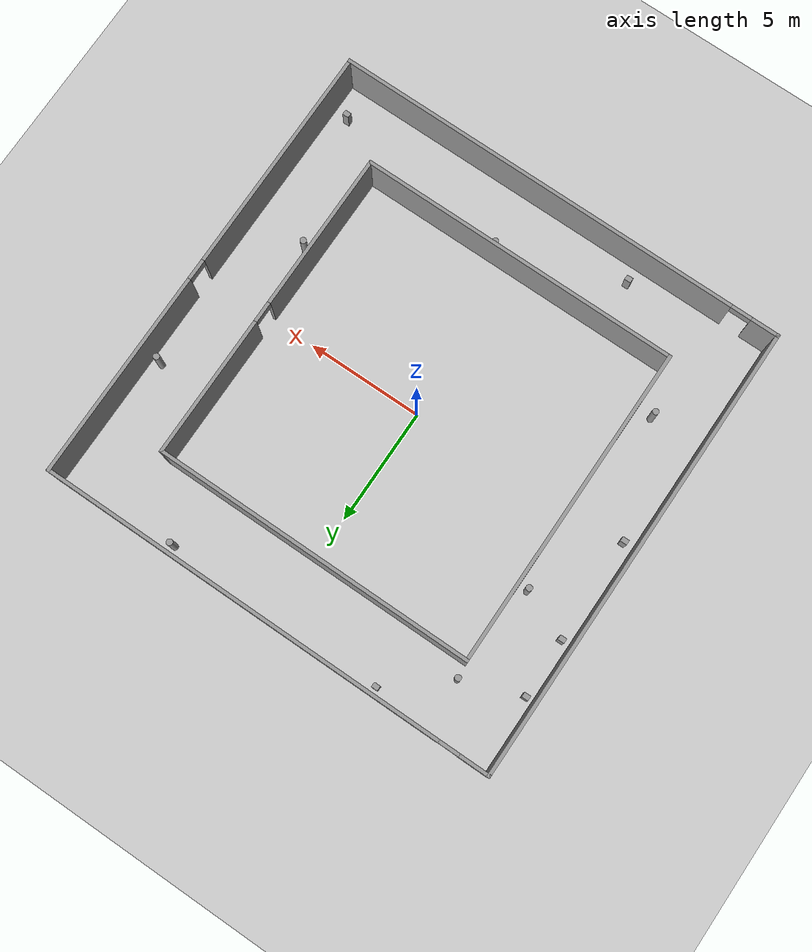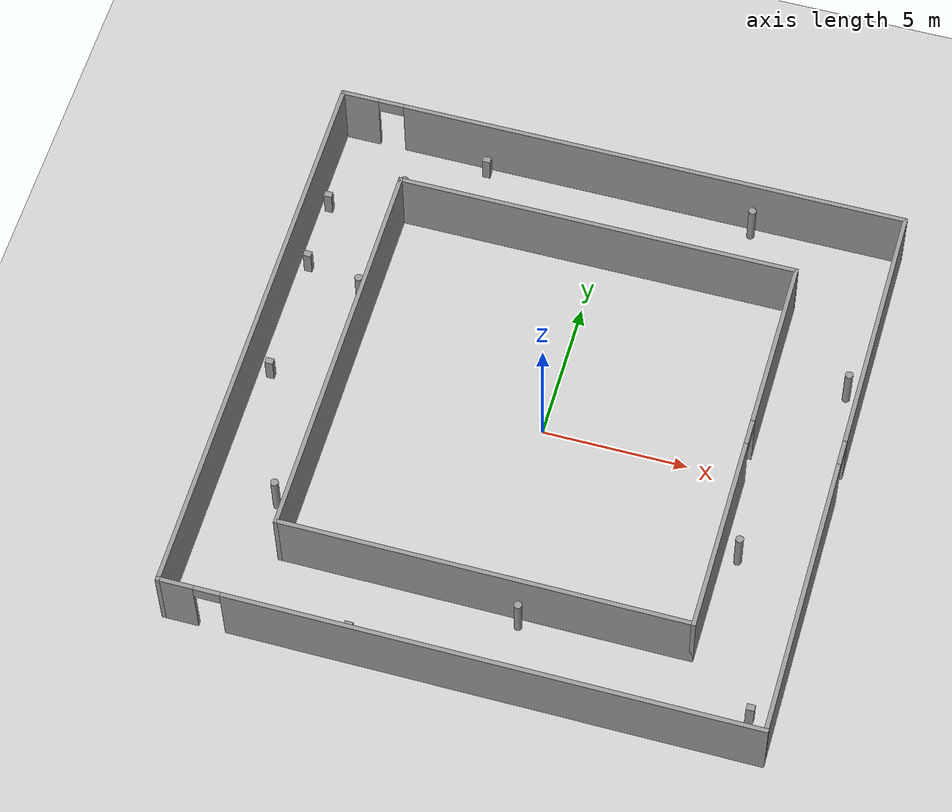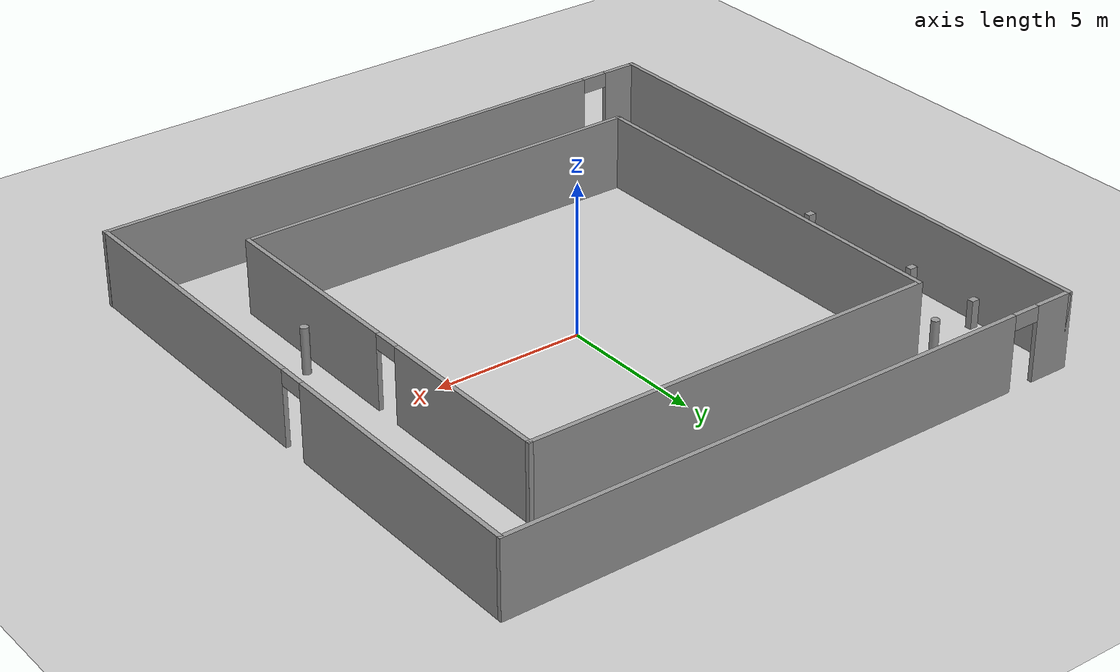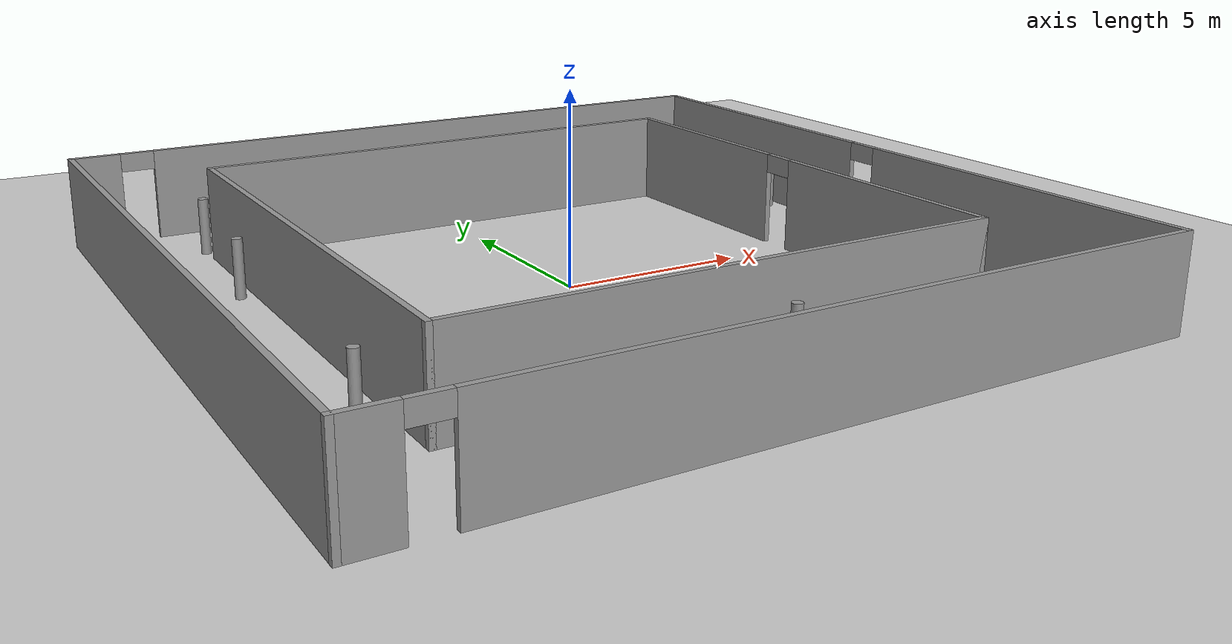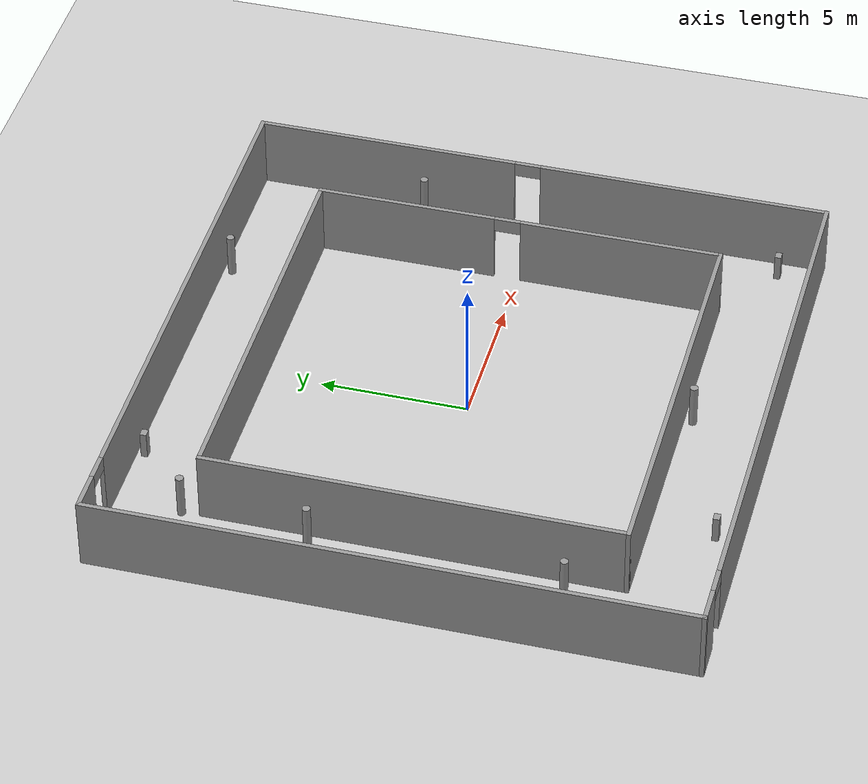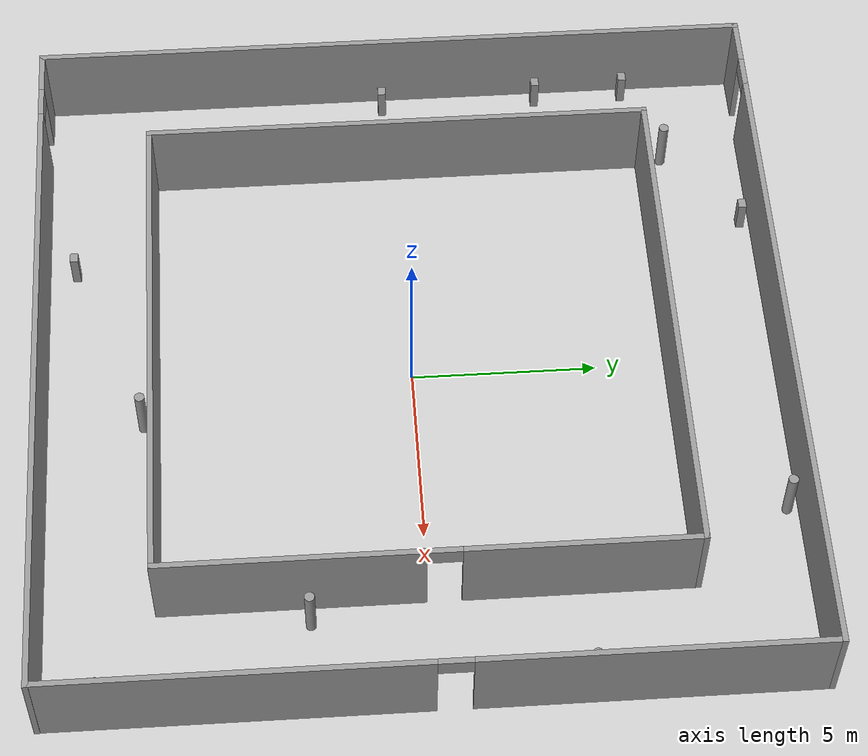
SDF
<sdf version="1.7">
 <world name="default">
  <light name="sun" type="directional">
   <pose>0 0 10 0 -0 0</pose>
   <diffuse>0.8 0.8 0.8 1</diffuse>
   <specular>0.2 0.2 0.2 1</specular>
   <attenuation>
    <range>1000</range>
    <constant>0.9</constant>
    <linear>0.01</linear>
    <quadratic>0.001</quadratic>
   </attenuation>
   <direction>-0.5 0.1 -0.9</direction>
   <spot><inner_angle>0</inner_angle><outer_angle>0</outer_angle><falloff>0</falloff></spot>
  </light>
  <model name="ground_plane">
   <static>1</static>
   <link name="link">
    <collision name="collision">
     <geometry><plane><normal>0 0 1</normal><size>100 100</size></plane></geometry>
     <surface>
      <contact><collide_bitmask>65535</collide_bitmask></contact>
      <friction><ode><mu>100</mu><mu2>50</mu2></ode></friction>
     </surface>
    </collision>
    <visual name="visual">
     <cast_shadows>0</cast_shadows>
     <geometry><plane><normal>0 0 1</normal><size>100 100</size></plane></geometry>
     <material>
      <script><uri>file://media/materials/scripts/gazebo.material</uri><name>Gazebo/Grey</name></script>
     </material>
    </visual>
   </link>
  </model>
  <gravity>0 0 -9.8</gravity>
  <magnetic_field>6e-06 2.3e-05 -4.2e-05</magnetic_field>
  <atmosphere type="adiabatic"/>
  <physics type="ode">
   <max_step_size>0.001</max_step_size>
   <real_time_factor>1</real_time_factor>
   <real_time_update_rate>1000</real_time_update_rate>
  </physics>
  <scene><ambient>0.4 0.4 0.4 1</ambient><background>0.7 0.7 0.7 1</background><shadows>1</shadows></scene>
  <spherical_coordinates>
   <surface_model>EARTH_WGS84</surface_model>
   <latitude_deg>0</latitude_deg>
   <longitude_deg>0</longitude_deg>
   <elevation>0</elevation>
   <heading_deg>0</heading_deg>
  </spherical_coordinates>
  <model name="corridors_3m">
   <pose>0.018121 -0.00843 0 0 -0 0</pose>
   <link name="Wall_1">
    <pose>1.8e-05 -9.925 0 0 -0 3.14159</pose>
    <visual name="Wall_1_Visual_0">
     <pose>-1.07983 0 1.25 0 -0 0</pose>
     <geometry><box><size>17.9015 0.15 2.5</size></box></geometry>
     <material>
      <script><uri>file://media/materials/scripts/gazebo.material</uri><name>Gazebo/Grey</name></script>
      <ambient>1 1 1 1</ambient>
     </material>
     <meta><layer>0</layer></meta>
    </visual>
    <collision name="Wall_1_Collision_0">
     <geometry><box><size>17.9015 0.15 2.5</size></box></geometry>
     <pose>-1.07983 0 1.25 0 -0 0</pose>
    </collision>
    <visual name="Wall_1_Visual_1">
     <pose>9.40076 0 1.25 0 -0 0</pose>
     <geometry><box><size>1.25965 0.15 2.5</size></box></geometry>
     <material>
      <script><uri>file://media/materials/scripts/gazebo.material</uri><name>Gazebo/Grey</name></script>
      <ambient>1 1 1 1</ambient>
     </material>
     <meta><layer>0</layer></meta>
    </visual>
    <collision name="Wall_1_Collision_1">
     <geometry><box><size>1.25965 0.15 2.5</size></box></geometry>
     <pose>9.40076 0 1.25 0 -0 0</pose>
    </collision>
    <visual name="Wall_1_Visual_2">
     <pose>8.32094 0 2.25 0 -0 0</pose>
     <geometry><box><size>0.9 0.15 0.5</size></box></geometry>
     <material>
      <script><uri>file://media/materials/scripts/gazebo.material</uri><name>Gazebo/Grey</name></script>
      <ambient>1 1 1 1</ambient>
     </material>
     <meta><layer>0</layer></meta>
    </visual>
    <collision name="Wall_1_Collision_2">
     <geometry><box><size>0.9 0.15 0.5</size></box></geometry>
     <pose>8.32094 0 2.25 0 -0 0</pose>
    </collision>
   </link>
   <link name="Wall_11">
    <collision name="Wall_11_Collision">
     <geometry><box><size>14 0.15 2.5</size></box></geometry>
     <pose>0 0 1.25 0 -0 0</pose>
    </collision>
    <visual name="Wall_11_Visual">
     <pose>0 0 1.25 0 -0 0</pose>
     <geometry><box><size>14 0.15 2.5</size></box></geometry>
     <material>
      <script><uri>file://media/materials/scripts/gazebo.material</uri><name>Gazebo/Grey</name></script>
      <ambient>1 1 1 1</ambient>
     </material>
     <meta><layer>0</layer></meta>
    </visual>
    <pose>-0.05836 -6.90598 0 0 -0 0</pose>
   </link>
   <link name="Wall_13">
    <pose>6.86664 0.019019 0 0 -0 1.5708</pose>
    <visual name="Wall_13_Visual_0">
     <pose>-3.5323 0 1.25 0 -0 0</pose>
     <geometry><box><size>6.9354 0.15 2.5</size></box></geometry>
     <material>
      <script><uri>file://media/materials/scripts/gazebo.material</uri><name>Gazebo/Grey</name></script>
      <ambient>1 1 1 1</ambient>
     </material>
     <meta><layer>0</layer></meta>
    </visual>
    <collision name="Wall_13_Collision_0">
     <geometry><box><size>6.9354 0.15 2.5</size></box></geometry>
     <pose>-3.5323 0 1.25 0 -0 0</pose>
    </collision>
    <visual name="Wall_13_Visual_1">
     <pose>3.9177 0 1.25 0 -0 0</pose>
     <geometry><box><size>6.1646 0.15 2.5</size></box></geometry>
     <material>
      <script><uri>file://media/materials/scripts/gazebo.material</uri><name>Gazebo/Grey</name></script>
      <ambient>1 1 1 1</ambient>
     </material>
     <meta><layer>0</layer></meta>
    </visual>
    <collision name="Wall_13_Collision_1">
     <geometry><box><size>6.1646 0.15 2.5</size></box></geometry>
     <pose>3.9177 0 1.25 0 -0 0</pose>
    </collision>
    <visual name="Wall_13_Visual_2">
     <pose>0.3854 0 2.25 0 -0 0</pose>
     <geometry><box><size>0.9 0.15 0.5</size></box></geometry>
     <material>
      <script><uri>file://media/materials/scripts/gazebo.material</uri><name>Gazebo/Grey</name></script>
      <ambient>1 1 1 1</ambient>
     </material>
     <meta><layer>0</layer></meta>
    </visual>
    <collision name="Wall_13_Collision_2">
     <geometry><box><size>0.9 0.15 0.5</size></box></geometry>
     <pose>0.3854 0 2.25 0 -0 0</pose>
    </collision>
   </link>
   <link name="Wall_14">
    <collision name="Wall_14_Collision">
     <geometry><box><size>14 0.15 2.5</size></box></geometry>
     <pose>0 0 1.25 0 -0 0</pose>
    </collision>
    <visual name="Wall_14_Visual">
     <pose>0 0 1.25 0 -0 0</pose>
     <geometry><box><size>14 0.15 2.5</size></box></geometry>
     <material>
      <script><uri>file://media/materials/scripts/gazebo.material</uri><name>Gazebo/Grey</name></script>
      <ambient>1 1 1 1</ambient>
     </material>
     <meta><layer>0</layer></meta>
    </visual>
    <pose>-0.05836 6.94402 0 0 -0 3.14159</pose>
   </link>
   <link name="Wall_3">
    <collision name="Wall_3_Collision">
     <geometry><box><size>20 0.15 2.5</size></box></geometry>
     <pose>0 0 1.25 0 -0 0</pose>
    </collision>
    <visual name="Wall_3_Visual">
     <pose>0 0 1.25 0 -0 0</pose>
     <geometry><box><size>20 0.15 2.5</size></box></geometry>
     <material>
      <script><uri>file://media/materials/scripts/gazebo.material</uri><name>Gazebo/Grey</name></script>
      <ambient>1 1 1 1</ambient>
     </material>
     <meta><layer>0</layer></meta>
    </visual>
    <pose>-9.95557 -0 0 0 -0 1.5708</pose>
   </link>
   <link name="Wall_5">
    <pose>-0.003821 9.925 0 0 -0 0</pose>
    <visual name="Wall_5_Visual_0">
     <pose>-9.34344 0 1.25 0 -0 0</pose>
     <geometry><box><size>1.36669 0.15 2.5</size></box></geometry>
     <material>
      <script><uri>file://media/materials/scripts/gazebo.material</uri><name>Gazebo/Grey</name></script>
      <ambient>1 1 1 1</ambient>
     </material>
     <meta><layer>0</layer></meta>
    </visual>
    <collision name="Wall_5_Collision_0">
     <geometry><box><size>1.36669 0.15 2.5</size></box></geometry>
     <pose>-9.34344 0 1.25 0 -0 0</pose>
    </collision>
    <visual name="Wall_5_Visual_1">
     <pose>1.13335 0 1.25 0 -0 0</pose>
     <geometry><box><size>17.7869 0.15 2.5</size></box></geometry>
     <material>
      <script><uri>file://media/materials/scripts/gazebo.material</uri><name>Gazebo/Grey</name></script>
      <ambient>1 1 1 1</ambient>
     </material>
     <meta><layer>0</layer></meta>
    </visual>
    <collision name="Wall_5_Collision_1">
     <geometry><box><size>17.7869 0.15 2.5</size></box></geometry>
     <pose>1.13335 0 1.25 0 -0 0</pose>
    </collision>
    <visual name="Wall_5_Visual_2">
     <pose>-8.2101 0 2.25 0 -0 0</pose>
     <geometry><box><size>0.9 0.15 0.5</size></box></geometry>
     <material>
      <script><uri>file://media/materials/scripts/gazebo.material</uri><name>Gazebo/Grey</name></script>
      <ambient>1 1 1 1</ambient>
     </material>
     <meta><layer>0</layer></meta>
    </visual>
    <collision name="Wall_5_Collision_2">
     <geometry><box><size>0.9 0.15 0.5</size></box></geometry>
     <pose>-8.2101 0 2.25 0 -0 0</pose>
    </collision>
   </link>
   <link name="Wall_7">
    <pose>9.94793 -0 0 0 -0 -1.5708</pose>
    <visual name="Wall_7_Visual_0">
     <pose>-5.45396 0 1.25 0 -0 0</pose>
     <geometry><box><size>9.09208 0.15 2.5</size></box></geometry>
     <material>
      <script><uri>file://media/materials/scripts/gazebo.material</uri><name>Gazebo/Grey</name></script>
      <ambient>1 1 1 1</ambient>
     </material>
     <meta><layer>0</layer></meta>
    </visual>
    <collision name="Wall_7_Collision_0">
     <geometry><box><size>9.09208 0.15 2.5</size></box></geometry>
     <pose>-5.45396 0 1.25 0 -0 0</pose>
    </collision>
    <visual name="Wall_7_Visual_1">
     <pose>4.99604 0 1.25 0 -0 0</pose>
     <geometry><box><size>10.0079 0.15 2.5</size></box></geometry>
     <material>
      <script><uri>file://media/materials/scripts/gazebo.material</uri><name>Gazebo/Grey</name></script>
      <ambient>1 1 1 1</ambient>
     </material>
     <meta><layer>0</layer></meta>
    </visual>
    <collision name="Wall_7_Collision_1">
     <geometry><box><size>10.0079 0.15 2.5</size></box></geometry>
     <pose>4.99604 0 1.25 0 -0 0</pose>
    </collision>
    <visual name="Wall_7_Visual_2">
     <pose>-0.457922 0 2.25 0 -0 0</pose>
     <geometry><box><size>0.9 0.15 0.5</size></box></geometry>
     <material>
      <script><uri>file://media/materials/scripts/gazebo.material</uri><name>Gazebo/Grey</name></script>
      <ambient>1 1 1 1</ambient>
     </material>
     <meta><layer>0</layer></meta>
    </visual>
    <collision name="Wall_7_Collision_2">
     <geometry><box><size>0.9 0.15 0.5</size></box></geometry>
     <pose>-0.457922 0 2.25 0 -0 0</pose>
    </collision>
   </link>
   <link name="Wall_9">
    <collision name="Wall_9_Collision">
     <geometry><box><size>14 0.15 2.5</size></box></geometry>
     <pose>0 0 1.25 0 -0 0</pose>
    </collision>
    <visual name="Wall_9_Visual">
     <pose>0 0 1.25 0 -0 0</pose>
     <geometry><box><size>14 0.15 2.5</size></box></geometry>
     <material>
      <script><uri>file://media/materials/scripts/gazebo.material</uri><name>Gazebo/Grey</name></script>
      <ambient>1 1 1 1</ambient>
     </material>
     <meta><layer>0</layer></meta>
    </visual>
    <pose>-6.98336 0.019019 0 0 -0 1.5708</pose>
   </link>
   <static>1</static>
  </model>
  <model name="unit_cylinder">
   <pose>4.7901 9.54856 0.766455 0 -0 0.001205</pose>
   <link name="link">
    <inertial>
     <mass>1</mass>
     <inertia><ixx>0.145833</ixx><ixy>0</ixy><ixz>0</ixz><iyy>0.145833</iyy><iyz>0</iyz><izz>0.125</izz></inertia>
    </inertial>
    <collision name="collision">
     <geometry><cylinder><radius>0.133684</radius><length>1.53292</length></cylinder></geometry>
    </collision>
    <visual name="visual">
     <geometry><cylinder><radius>0.133684</radius><length>1.53292</length></cylinder></geometry>
     <material>
      <script><name>Gazebo/Grey</name><uri>file://media/materials/scripts/gazebo.material</uri></script>
     </material>
    </visual>
   </link>
  </model>
  <model name="unit_box">
   <pose>-4.68638 9.57204 0.470714 -3e-06 2e-06 -5.5e-05</pose>
   <link name="link">
    <inertial>
     <mass>1</mass>
     <inertia>
      <ixx>0.166667</ixx>
      <ixy>0</ixy>
      <ixz>0</ixz>
      <iyy>0.166667</iyy>
      <iyz>0</iyz>
      <izz>0.166667</izz>
     </inertia>
    </inertial>
    <collision name="collision">
     <geometry><box><size>0.278057 0.218077 0.941429</size></box></geometry>
    </collision>
    <visual name="visual">
     <geometry><box><size>0.278057 0.218077 0.941429</size></box></geometry>
     <material>
      <script><name>Gazebo/Grey</name><uri>file://media/materials/scripts/gazebo.material</uri></script>
     </material>
    </visual>
   </link>
  </model>
  <model name="unit_cylinder_clone">
   <pose>-7.05576 7.59873 0.766456 0 -0 0.001203</pose>
   <link name="link">
    <inertial>
     <mass>1</mass>
     <inertia><ixx>0.145833</ixx><ixy>0</ixy><ixz>0</ixz><iyy>0.145833</iyy><iyz>0</iyz><izz>0.125</izz></inertia>
    </inertial>
    <collision name="collision">
     <geometry><cylinder><radius>0.133684</radius><length>1.53292</length></cylinder></geometry>
    </collision>
    <visual name="visual">
     <geometry><cylinder><radius>0.133684</radius><length>1.53292</length></cylinder></geometry>
     <material>
      <script><name>Gazebo/Grey</name><uri>file://media/materials/scripts/gazebo.material</uri></script>
     </material>
    </visual>
   </link>
  </model>
  <model name="unit_box_clone">
   <pose>-9.55385 6.70167 0.470715 -2e-06 -1e-06 -7.2e-05</pose>
   <link name="link">
    <inertial>
     <mass>1</mass>
     <inertia>
      <ixx>0.166667</ixx>
      <ixy>0</ixy>
      <ixz>0</ixz>
      <iyy>0.166667</iyy>
      <iyz>0</iyz>
      <izz>0.166667</izz>
     </inertia>
    </inertial>
    <collision name="collision">
     <geometry><box><size>0.278057 0.218077 0.941429</size></box></geometry>
    </collision>
    <visual name="visual">
     <geometry><box><size>0.278057 0.218077 0.941429</size></box></geometry>
     <material>
      <script><name>Gazebo/Grey</name><uri>file://media/materials/scripts/gazebo.material</uri></script>
     </material>
    </visual>
   </link>
  </model>
  <model name="unit_cylinder_clone_clone">
   <pose>-7.39839 3.32377 0.766456 0 -0 0.001201</pose>
   <link name="link">
    <inertial>
     <mass>1</mass>
     <inertia><ixx>0.145833</ixx><ixy>0</ixy><ixz>0</ixz><iyy>0.145833</iyy><iyz>0</iyz><izz>0.125</izz></inertia>
    </inertial>
    <collision name="collision">
     <geometry><cylinder><radius>0.133684</radius><length>1.53292</length></cylinder></geometry>
    </collision>
    <visual name="visual">
     <geometry><cylinder><radius>0.133684</radius><length>1.53292</length></cylinder></geometry>
     <material>
      <script><name>Gazebo/Grey</name><uri>file://media/materials/scripts/gazebo.material</uri></script>
     </material>
    </visual>
   </link>
  </model>
  <model name="unit_box_clone_clone">
   <pose>-9.49871 4.15867 0.470715 -1e-06 2e-06 -4.8e-05</pose>
   <link name="link">
    <inertial>
     <mass>1</mass>
     <inertia>
      <ixx>0.166667</ixx>
      <ixy>0</ixy>
      <ixz>0</ixz>
      <iyy>0.166667</iyy>
      <iyz>0</iyz>
      <izz>0.166667</izz>
     </inertia>
    </inertial>
    <collision name="collision">
     <geometry><box><size>0.278057 0.218077 0.941429</size></box></geometry>
    </collision>
    <visual name="visual">
     <geometry><box><size>0.278057 0.218077 0.941429</size></box></geometry>
     <material>
      <script><name>Gazebo/Grey</name><uri>file://media/materials/scripts/gazebo.material</uri></script>
     </material>
    </visual>
   </link>
  </model>
  <model name="unit_box_clone_clone_clone">
   <pose>-9.42643 -0.30325 0.470714 -2e-06 1e-06 8e-06</pose>
   <link name="link">
    <inertial>
     <mass>1</mass>
     <inertia>
      <ixx>0.166667</ixx>
      <ixy>0</ixy>
      <ixz>0</ixz>
      <iyy>0.166667</iyy>
      <iyz>0</iyz>
      <izz>0.166667</izz>
     </inertia>
    </inertial>
    <collision name="collision">
     <geometry><box><size>0.278057 0.218077 0.941429</size></box></geometry>
    </collision>
    <visual name="visual">
     <geometry><box><size>0.278057 0.218077 0.941429</size></box></geometry>
     <material>
      <script><name>Gazebo/Grey</name><uri>file://media/materials/scripts/gazebo.material</uri></script>
     </material>
    </visual>
   </link>
  </model>
  <model name="unit_cylinder_clone_clone_clone">
   <pose>-7.67931 -5.05916 0.766456 0 -0 0.0012</pose>
   <link name="link">
    <inertial>
     <mass>1</mass>
     <inertia><ixx>0.145833</ixx><ixy>0</ixy><ixz>0</ixz><iyy>0.145833</iyy><iyz>0</iyz><izz>0.125</izz></inertia>
    </inertial>
    <collision name="collision">
     <geometry><cylinder><radius>0.133684</radius><length>1.53292</length></cylinder></geometry>
    </collision>
    <visual name="visual">
     <geometry><cylinder><radius>0.133684</radius><length>1.53292</length></cylinder></geometry>
     <material>
      <script><name>Gazebo/Grey</name><uri>file://media/materials/scripts/gazebo.material</uri></script>
     </material>
    </visual>
   </link>
  </model>
  <model name="unit_box_clone_clone_clone_clone">
   <pose>-3.9293 -9.11807 0.470714 -1e-06 2e-06 5e-05</pose>
   <link name="link">
    <inertial>
     <mass>1</mass>
     <inertia>
      <ixx>0.166667</ixx>
      <ixy>0</ixy>
      <ixz>0</ixz>
      <iyy>0.166667</iyy>
      <iyz>0</iyz>
      <izz>0.166667</izz>
     </inertia>
    </inertial>
    <collision name="collision">
     <geometry><box><size>0.278057 0.218077 0.941429</size></box></geometry>
    </collision>
    <visual name="visual">
     <geometry><box><size>0.278057 0.218077 0.941429</size></box></geometry>
     <material>
      <script><name>Gazebo/Grey</name><uri>file://media/materials/scripts/gazebo.material</uri></script>
     </material>
    </visual>
   </link>
  </model>
  <model name="unit_cylinder_clone_clone_clone_clone">
   <pose>1.20711 -7.27125 0.766456 0 -0 0.001199</pose>
   <link name="link">
    <inertial>
     <mass>1</mass>
     <inertia><ixx>0.145833</ixx><ixy>0</ixy><ixz>0</ixz><iyy>0.145833</iyy><iyz>0</iyz><izz>0.125</izz></inertia>
    </inertial>
    <collision name="collision">
     <geometry><cylinder><radius>0.133684</radius><length>1.53292</length></cylinder></geometry>
    </collision>
    <visual name="visual">
     <geometry><cylinder><radius>0.133684</radius><length>1.53292</length></cylinder></geometry>
     <material>
      <script><name>Gazebo/Grey</name><uri>file://media/materials/scripts/gazebo.material</uri></script>
     </material>
    </visual>
   </link>
  </model>
  <model name="unit_box_clone_clone_clone_clone_clone">
   <pose>9.20792 -8.51951 0.470714 -2e-06 -2e-06 3e-06</pose>
   <link name="link">
    <inertial>
     <mass>1</mass>
     <inertia>
      <ixx>0.166667</ixx>
      <ixy>0</ixy>
      <ixz>0</ixz>
      <iyy>0.166667</iyy>
      <iyz>0</iyz>
      <izz>0.166667</izz>
     </inertia>
    </inertial>
    <collision name="collision">
     <geometry><box><size>0.278057 0.218077 0.941429</size></box></geometry>
    </collision>
    <visual name="visual">
     <geometry><box><size>0.278057 0.218077 0.941429</size></box></geometry>
     <material>
      <script><name>Gazebo/Grey</name><uri>file://media/materials/scripts/gazebo.material</uri></script>
     </material>
    </visual>
   </link>
  </model>
  <model name="unit_cylinder_clone_clone_clone_clone_clone">
   <pose>7.46057 -3.03575 0.766456 0 -0 0.001178</pose>
   <link name="link">
    <inertial>
     <mass>1</mass>
     <inertia><ixx>0.145833</ixx><ixy>0</ixy><ixz>0</ixz><iyy>0.145833</iyy><iyz>0</iyz><izz>0.125</izz></inertia>
    </inertial>
    <collision name="collision">
     <geometry><cylinder><radius>0.133684</radius><length>1.53292</length></cylinder></geometry>
    </collision>
    <visual name="visual">
     <geometry><cylinder><radius>0.133684</radius><length>1.53292</length></cylinder></geometry>
     <material>
      <script><name>Gazebo/Grey</name><uri>file://media/materials/scripts/gazebo.material</uri></script>
     </material>
    </visual>
   </link>
  </model>
  <model name="unit_cylinder_clone_clone_clone_clone_clone_clone">
   <pose>9.46312 4 0.766454 0 -0 0.00118</pose>
   <link name="link">
    <inertial>
     <mass>1</mass>
     <inertia><ixx>0.145833</ixx><ixy>0</ixy><ixz>0</ixz><iyy>0.145833</iyy><iyz>0</iyz><izz>0.125</izz></inertia>
    </inertial>
    <collision name="collision">
     <geometry><cylinder><radius>0.133684</radius><length>1.53292</length></cylinder></geometry>
    </collision>
    <visual name="visual">
     <geometry><cylinder><radius>0.133684</radius><length>1.53292</length></cylinder></geometry>
     <material>
      <script><name>Gazebo/Grey</name><uri>file://media/materials/scripts/gazebo.material</uri></script>
     </material>
    </visual>
   </link>
  </model>
 </world>
</sdf>
